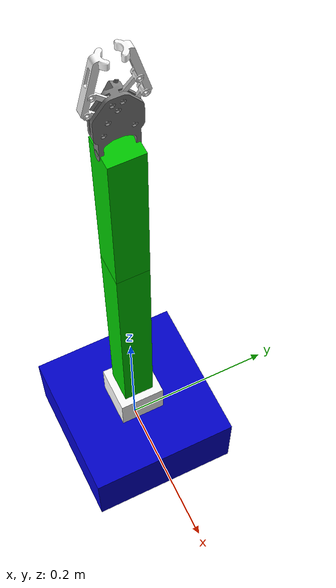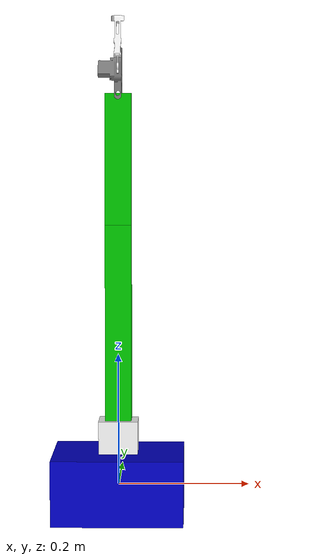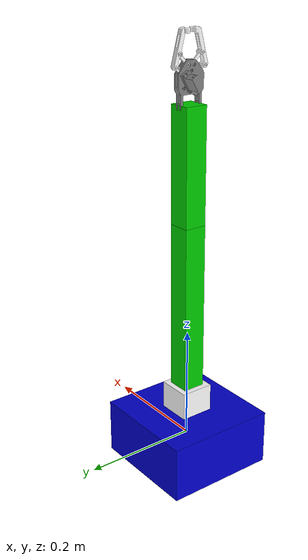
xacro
<?xml version="1.0"?>
<robot xmlns:xacro="http://www.ros.org/wiki/xacro" name="mi_brazo_4gdl">
    <xacro:arg name="initial_positions_file" default="initial_positions.yaml" />

    <!-- Import mi_brazo_4gdl urdf file -->
    <xacro:include filename="$(find my_arm_description)/urdf/my_arm.urdf" />

    <!-- Import control_xacro -->
    <xacro:include filename="mi_brazo_4gdl.ros2_control.xacro" />

    <xacro:mi_brazo_4gdl_ros2_control name="FakeSystem" initial_positions_file="$(arg initial_positions_file)"/>

</robot>

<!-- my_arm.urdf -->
<robot name="mi_brazo_4gdl">

  <link name="base_link">
    <visual>
      <geometry>
        <box size="0.2 0.2 0.1"/>
      </geometry>
      <material name="blue">
        <color rgba="0 0 0.8 1"/>
      </material>
    </visual>
    <collision>
      <geometry>
        <box size="0.2 0.2 0.1"/>
      </geometry>
    </collision>
  </link>

  <joint name="joint_1" type="revolute">
    <parent link="base_link"/>
    <child link="link_1"/>
    <origin xyz="0 0 0.05" rpy="0 0 0"/>
    <axis xyz="0 0 1"/> <limit effort="10.0" lower="-3.1416" upper="3.1416" velocity="1.0"/>
  </joint>

  <link name="link_1">
    <visual>
      <origin xyz="0 0 0.025" rpy="0 0 0"/>
      <geometry>
        <box size="0.06 0.06 0.05"/>
      </geometry>
      <material name="white">
        <color rgba="1 1 1 1"/>
      </material>
    </visual>
    <collision>
      <origin xyz="0 0 0.025" rpy="0 0 0"/>
      <geometry>
        <box size="0.06 0.06 0.05"/>
      </geometry>
    </collision>
    <inertial>
      <origin xyz="0 0 0" rpy="0 0 0"/>
      <mass value="0.1"/>
      <inertia ixx="0.001" ixy="0.0" ixz="0.0" iyy="0.001" iyz="0.0" izz="0.001"/>
    </inertial>
  </link>

  <joint name="joint_2" type="revolute">
    <parent link="link_1"/>
    <child link="link_2"/>
    <origin xyz="0 0 0.05" rpy="0 0 0"/>
    <axis xyz="0 1 0"/> <limit effort="10.0" lower="-1.5708" upper="1.5708" velocity="1.0"/>
  </joint>

  <link name="link_2">
    <visual>
      <origin xyz="0 0 0.15" rpy="0 0 0"/>
      <geometry>
        <box size="0.04 0.04 0.3"/> </geometry>
      <material name="green">
        <color rgba="0 0.8 0 1"/>
      </material>
    </visual>
    <collision>
      <origin xyz="0 0 0.15" rpy="0 0 0"/>
      <geometry>
        <box size="0.04 0.04 0.3"/>
      </geometry>
    </collision>
    <inertial>
      <origin xyz="0 0 0" rpy="0 0 0"/>
      <mass value="0.1"/>
      <inertia ixx="0.001" ixy="0.0" ixz="0.0" iyy="0.001" iyz="0.0" izz="0.001"/>
    </inertial>
  </link>

  <joint name="joint_3" type="revolute">
    <parent link="link_2"/>
    <child link="link_3"/>
    <origin xyz="0 0 0.3" rpy="0 0 0"/>
    <axis xyz="0 1 0"/> <limit effort="10.0" lower="-1.5708" upper="1.5708" velocity="1.0"/>
  </joint>

  <link name="link_3">
    <visual>
      <origin xyz="0 0 0.1" rpy="0 0 0"/>
      <geometry>
        <box size="0.04 0.04 0.2"/> </geometry>
      <material name="green">
        <color rgba="0 0.8 0 1"/>
      </material>
    </visual>
    <collision>
      <origin xyz="0 0 0.1" rpy="0 0 0"/>
      <geometry>
        <box size="0.04 0.04 0.2"/>
      </geometry>
    </collision>
    <inertial>
      <origin xyz="0 0 0" rpy="0 0 0"/>
      <mass value="0.1"/>
      <inertia ixx="0.001" ixy="0.0" ixz="0.0" iyy="0.001" iyz="0.0" izz="0.001"/>
    </inertial>
  </link>

  <joint name="joint_4" type="revolute">
    <parent link="link_3"/>
    <child link="link_4"/>
    <origin xyz="0 0 0.2" rpy="0 0 0"/>
    <axis xyz="0 1 0"/> <limit effort="10.0" lower="-1.5708" upper="1.5708" velocity="1.0"/>
  </joint>

  <link name="link_4">
    <visual>
      <origin xyz="0.0 0.0 0.0" rpy="0.0 0.0 0.0"/>
      <geometry>
        <mesh filename="package://my_arm_description/meshes/gripper_base.stl" scale="0.001 0.001 0.001"/>
      </geometry>
      <material name="grey">
        <color rgba="0.5 0.5 0.5 1.0"/>
      </material>
    </visual>
    <collision>
      <origin xyz="0.0 0.0 0.0" rpy="0.0 0.0 0.0"/>
      <geometry>
        <mesh filename="package://my_arm_description/meshes/gripper_base.stl" scale="0.001 0.001 0.001"/>
      </geometry>
    </collision>
    <inertial>
      <origin xyz="-0.005295 0.0023 0.035055" rpy="0 0 0"/>
      <mass value="0.198702"/>
      <inertia ixx="78655.266e-9" ixy="5398.544e-9"  ixz="1586.829e-9"
                               iyy="64281.36e-9"  iyz="-2363.624e-9"
                                               izz="50217.521e-9"/>
    </inertial>
  </link>

  <joint name="left_finger_joint" type="revolute">
    <parent link="link_4"/>
    <child link="left_finger"/>
    <axis xyz="1 0 0"/> <origin xyz="0.0 -0.010 0.041" rpy="0 0 0"/>
    <limit effort="5.0" lower="0.0" upper="0.52" velocity="1.0"/>
  </joint>

  <link name="left_finger">
    <visual>
      <origin xyz="0.0 0.0 0.0" rpy="0.0 0.0 0.0"/>
      <geometry>
        <mesh filename="package://my_arm_description/meshes/left_finger.stl" scale="0.001 0.001 0.001"/>
      </geometry>
      <material name="white"/>
    </visual>
    <collision>
      <origin xyz="0.0 0.0 0.0" rpy="0.0 0.0 0.0"/>
      <geometry>
        <mesh filename="package://my_arm_description/meshes/left_finger.stl" scale="0.001 0.001 0.001"/>
      </geometry>
    </collision>
    <inertial>
      <origin xyz="0.005e-3 -8.31e-3 37.327e-3" rpy="0 0 0"/>
      <mass value="45.765e-3"/>
      <inertia ixx="31433.711e-9" ixy="1.6e-9"  ixz="2.299e-9"
                               iyy="28962.501e-9"  iyz="-334.365e-9"
                                               izz="3330.424e-9"/>
    </inertial>
  </link>

  <joint name="right_finger_joint" type="revolute">
    <parent link="link_4"/>
    <child link="right_finger"/>
    <axis xyz="1 0 0"/>
    <origin xyz="0.0 0.010 0.041" rpy="0 0 0"/>
    <limit effort="5.0" lower="-0.52" upper="0.0" velocity="1.0"/>
    <mimic joint="left_finger_joint" multiplier="-1.0" offset="0.0"/>
  </joint>

  <link name="right_finger">
    <visual>
      <origin xyz="0.0 0.0 0.0" rpy="0.0 0.0 0.0"/>
      <geometry>
        <mesh filename="package://my_arm_description/meshes/right_finger.stl" scale="0.001 0.001 0.001"/>
      </geometry>
      <material name="white"/>
    </visual>
    <collision>
      <origin xyz="0.0 0.0 0.0" rpy="0.0 0.0 0.0"/>
      <geometry>
        <mesh filename="package://my_arm_description/meshes/right_finger.stl" scale="0.001 0.001 0.001"/>
      </geometry>
    </collision>
    <inertial>
      <origin xyz="-1.49e-3 8.338e-3 37.456e-3" rpy="0 0 0"/>
      <mass value="45.606e-3"/>
      <inertia ixx="31197.289e-9" ixy="7.20e-9"  ixz="22.872e-9"
                               iyy="28741.174e-9"  iyz="376.898e-9"
                                               izz="3317.449e-9"/>
    </inertial>
  </link>

  </robot>
